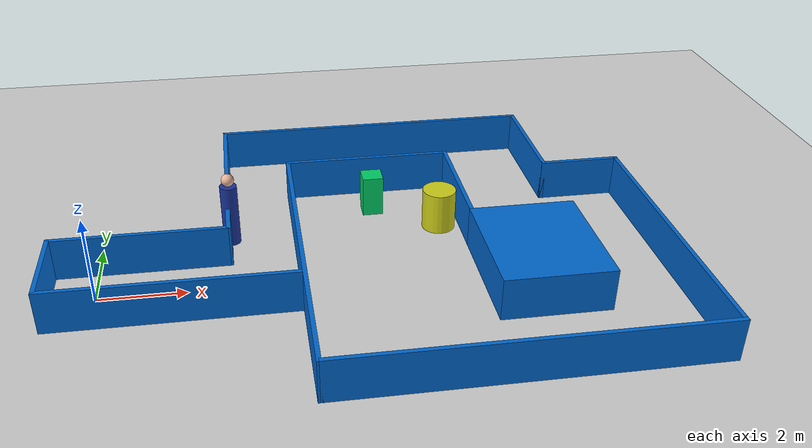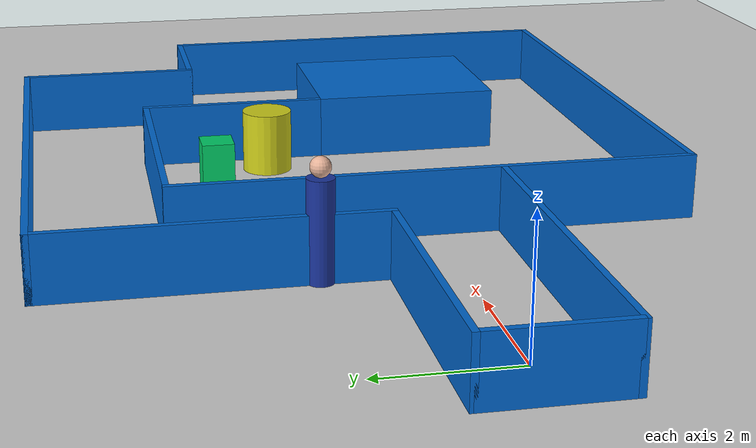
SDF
<?xml version="1.0"?>
<sdf version='1.7'>
  <world name='default'>

    <light name='sun' type='directional'>
      <cast_shadows>1</cast_shadows>
      <pose>0 0 10 0 -0 0</pose>
      <diffuse>0.8 0.8 0.8 1</diffuse>
      <specular>0.2 0.2 0.2 1</specular>
      <attenuation>
        <range>1000</range>
        <constant>0.9</constant>
        <linear>0.01</linear>
        <quadratic>0.001</quadratic>
      </attenuation>
      <direction>-0.5 0.1 -0.9</direction>
      <spot>
        <inner_angle>0</inner_angle>
        <outer_angle>0</outer_angle>
        <falloff>0</falloff>
      </spot>
    </light>

    <model name='ground_plane'>
      <static>1</static>
      <link name='link'>
        <collision name='collision'>
          <geometry>
            <plane>
              <normal>0 0 1</normal>
              <size>100 100</size>
            </plane>
          </geometry>
          <surface>
            <friction>
              <ode>
                <mu>100</mu>
                <mu2>50</mu2>
              </ode>
            </friction>
          </surface>
        </collision>
        <visual name='visual'>
          <cast_shadows>0</cast_shadows>
          <geometry>
            <plane>
              <normal>0 0 1</normal>
              <size>100 100</size>
            </plane>
          </geometry>
          <material>
            <script>
              <uri>file://media/materials/scripts/gazebo.material</uri>
              <name>Gazebo/Grey</name>
            </script>
          </material>
        </visual>
      </link>
    </model>

    <gravity>0 0 -9.8</gravity>
    <physics type='ode'>
      <max_step_size>0.001</max_step_size>
      <real_time_factor>1</real_time_factor>
      <real_time_update_rate>1000</real_time_update_rate>
    </physics>
    <scene>
      <ambient>0.4 0.4 0.4 1</ambient>
      <background>0.7 0.7 0.7 1</background>
      <shadows>0</shadows>
    </scene>
    <gui fullscreen='0'>
      <camera name='user_camera'>
        <pose>8.0 0.0 30.0 0.0 1.5707 1.5707</pose>
        <view_controller>orbit</view_controller>
      </camera>
    </gui>

    <model name="wall1">
      <static>1</static>
      <link name='wall1'>
        <pose>-1 0 0.5 0 0 0</pose>
        <collision name='wall1_collision'>
          <geometry><box><size>0.1 2 1</size></box></geometry>
        </collision>
        <visual name='wall1_visual'>
          <geometry><box><size>0.1 2 1</size></box></geometry>
          <material><ambient>0.1 0.1 0.1 1</ambient><diffuse>0 0.4 0.8 1</diffuse></material>
        </visual>
      </link>
    </model>

    <model name="wall2">
      <static>1</static>
      <link name='wall2'>
        <pose>1.7 -1 0.5 0 0 0</pose>
        <collision name='wall2_collision'>
          <geometry><box><size>5.5 0.1 1</size></box></geometry>
        </collision>
        <visual name='wall2_visual'>
          <geometry><box><size>5.5 0.1 1</size></box></geometry>
          <material><ambient>0.1 0.1 0.1 1</ambient><diffuse>0 0.4 0.8 1</diffuse></material>
        </visual>
      </link>
    </model>

    <model name="wall3">
      <static>1</static>
      <link name='wall3'>
        <pose>0.95 1 0.5 0 0 0</pose>
        <collision name='wall3_collision'>
          <geometry><box><size>4 0.1 1</size></box></geometry>
        </collision>
        <visual name='wall3_visual'>
          <geometry><box><size>4 0.1 1</size></box></geometry>
          <material><ambient>0.1 0.1 0.1 1</ambient><diffuse>0 0.4 0.8 1</diffuse></material>
        </visual>
      </link>
    </model>

    <model name="wall4">
      <static>1</static>
      <link name='wall4'>
        <pose>2.95 3.45 0.5 0 0 0</pose>
        <collision name='wall4_collision'>
          <geometry><box><size>0.1 5 1</size></box></geometry>
        </collision>
        <visual name='wall4_visual'>
          <geometry><box><size>0.1 5 1</size></box></geometry>
          <material><ambient>0.1 0.1 0.1 1</ambient><diffuse>0 0.4 0.8 1</diffuse></material>
        </visual>
      </link>
    </model>

    <model name="wall5">
      <static>1</static>
      <link name='wall5'>
        <pose>6.9 5.9 0.5 0 0 0</pose>
        <collision name='wall5_collision'>
          <geometry><box><size>8 0.1 1</size></box></geometry>
        </collision>
        <visual name='wall5_visual'>
          <geometry><box><size>8 0.1 1</size></box></geometry>
          <material><ambient>0.1 0.1 0.1 1</ambient><diffuse>0 0.4 0.8 1</diffuse></material>
        </visual>
      </link>
    </model>

    <model name="wall6">
      <static>1</static>
      <link name='wall6'>
        <pose>10.9 4.45 0.5 0 0 0</pose>
        <collision name='wall6_collision'>
          <geometry><box><size>0.1 3 1</size></box></geometry>
        </collision>
        <visual name='wall6_visual'>
          <geometry><box><size>0.1 3 1</size></box></geometry>
          <material><ambient>0.1 0.1 0.1 1</ambient><diffuse>0 0.4 0.8 1</diffuse></material>
        </visual>
      </link>
    </model>

    <model name="wall7">
      <static>1</static>
      <link name='wall7'>
        <pose>11.85 3.00 0.5 0 0 0</pose>
        <collision name='wall7_collision'>
          <geometry><box><size>2 0.1 1</size></box></geometry>
        </collision>
        <visual name='wall7_visual'>
          <geometry><box><size>2 0.1 1</size></box></geometry>
          <material><ambient>0.1 0.1 0.1 1</ambient><diffuse>0 0.4 0.8 1</diffuse></material>
        </visual>
      </link>
    </model>

    <model name="wall8">
      <static>1</static>
      <link name='wall8'>
        <pose>12.8 -0.45 0.5 0 0 0</pose>
        <collision name='wall8_collision'>
          <geometry><box><size>0.1 7 1</size></box></geometry>
        </collision>
        <visual name='wall8_visual'>
          <geometry><box><size>0.1 7 1</size></box></geometry>
          <material><ambient>0.1 0.1 0.1 1</ambient><diffuse>0 0.4 0.8 1</diffuse></material>
        </visual>
      </link>
    </model>

    <model name="wall9">
      <static>1</static>
      <link name='wall9'>
        <pose>8.675 -3.95 0.5 0 0 0</pose>
        <collision name='wall9_collision'>
          <geometry><box><size>8.35 0.1 1</size></box></geometry>
        </collision>
        <visual name='wall9_visual'>
          <geometry><box><size>8.35 0.1 1</size></box></geometry>
          <material><ambient>0.1 0.1 0.1 1</ambient><diffuse>0 0.4 0.8 1</diffuse></material>
        </visual>
      </link>
    </model>

    <model name="wall10">
      <static>1</static>
      <link name='wall10'>
        <pose>4.5 0 0.5 0 0 0</pose>
        <collision name='wall10_collision'>
          <geometry><box><size>0.1 8 1</size></box></geometry>
        </collision>
        <visual name='wall10_visual'>
          <geometry><box><size>0.1 8 1</size></box></geometry>
          <material><ambient>0.1 0.1 0.1 1</ambient><diffuse>0 0.4 0.8 1</diffuse></material>
        </visual>
      </link>
    </model>

    <model name="wall11">
      <static>1</static>
      <link name='wall11'>
        <pose>6.5 3.95 0.5 0 0 0</pose>
        <collision name='wall11_collision'>
          <geometry><box><size>4 0.1 1</size></box></geometry>
        </collision>
        <visual name='wall11_visual'>
          <geometry><box><size>4 0.1 1</size></box></geometry>
          <material><ambient>0.1 0.1 0.1 1</ambient><diffuse>0 0.4 0.8 1</diffuse></material>
        </visual>
      </link>
    </model>

    <model name="wall12">
      <static>1</static>
      <link name='wall12'>
        <pose>8.55 2.5 0.5 0 0 0</pose>
        <collision name='wall12_collision'>
          <geometry><box><size>0.1 3 1</size></box></geometry>
        </collision>
        <visual name='wall12_visual'>
          <geometry><box><size>0.1 3 1</size></box></geometry>
          <material><ambient>0.1 0.1 0.1 1</ambient><diffuse>0 0.4 0.8 1</diffuse></material>
        </visual>
      </link>
    </model>

    <model name="wall13">
      <static>1</static>
      <link name='wall13'>
        <pose>9.75 -0.5 0.5 0 0 0</pose>
        <collision name='wall13_collision'>
          <geometry><box><size>2.5 3 1</size></box></geometry>
        </collision>
        <visual name='wall13_visual'>
          <geometry><box><size>2.5 3 1</size></box></geometry>
          <material><ambient>0.1 0.1 0.1 1</ambient><diffuse>0 0.4 0.8 1</diffuse></material>
        </visual>
      </link>
    </model>

    <model name="goal">
      <static>1</static>
      <link name='goal'>
        <pose>6.5 3 0.5 0 0 0</pose>
        <collision name='goal_collision'>
          <geometry><box><size>0.5 0.5 1</size></box></geometry>
        </collision>
        <visual name='goal_visual'>
          <geometry><box><size>0.5 0.5 1</size></box></geometry>
          <material><ambient>0.1 0.1 0.1 1</ambient><diffuse>0 0.8 0.4 1</diffuse></material>
        </visual>
      </link>
    </model>

    <model name="circular_obstacle">
      <pose>8.0 2.0 0.5 0 0 0</pose>
      <allow_auto_disable>0</allow_auto_disable>
      <link name="link">
        <inertial>
          <mass>100.0</mass>
          <inertia><ixx>10.0</ixx><iyy>10.0</iyy><izz>10.0</izz></inertia>
        </inertial>
        <collision name="collision">
          <geometry><cylinder><radius>0.4</radius><length>1.0</length></cylinder></geometry>
          <surface><friction><ode><mu>0.0</mu><mu2>0.0</mu2></ode></friction></surface>
        </collision>
        <visual name="visual">
          <geometry><cylinder><radius>0.4</radius><length>1.0</length></cylinder></geometry>
          <material><ambient>0.8 0.8 0.1 1</ambient><diffuse>0.8 0.8 0.1 1</diffuse></material>
        </visual>
      </link>
      <plugin name="circular_obstacle_planar_move" filename="libgazebo_ros_planar_move.so">
        <ros>
          <namespace>/obstacle_circ</namespace>
          <remapping>cmd_vel:=cmd_vel</remapping>
        </ros>
        <update_rate>50.0</update_rate>
        <publish_rate>10.0</publish_rate>
        <publish_odom>false</publish_odom>
        <publish_odom_tf>false</publish_odom_tf>
        <robot_base_frame>link</robot_base_frame>
      </plugin>
    </model>

    <model name="random_human">
      <pose>3.0 2.0 0.0 0 0 0</pose>
      <allow_auto_disable>0</allow_auto_disable>
      <link name="link">
        <inertial>
          <mass>70.0</mass>
          <inertia><ixx>10.0</ixx><iyy>10.0</iyy><izz>10.0</izz></inertia>
        </inertial>

        <collision name="body_collision">
          <pose>0 0 0.75 0 0 0</pose>
          <geometry><cylinder><radius>0.2</radius><length>1.5</length></cylinder></geometry>
          <surface><friction><ode><mu>0.0</mu><mu2>0.0</mu2></ode></friction></surface>
        </collision>
        <visual name="body_visual">
          <pose>0 0 0.75 0 0 0</pose>
          <geometry><cylinder><radius>0.2</radius><length>1.5</length></cylinder></geometry>
          <material><ambient>0.1 0.2 0.6 1</ambient><diffuse>0.1 0.2 0.6 1</diffuse></material>
        </visual>

        <collision name="head_collision">
          <pose>0 0 1.65 0 0 0</pose>
          <geometry><sphere><radius>0.15</radius></sphere></geometry>
        </collision>
        <visual name="head_visual">
          <pose>0 0 1.65 0 0 0</pose>
          <geometry><sphere><radius>0.15</radius></sphere></geometry>
          <material><ambient>0.9 0.7 0.6 1</ambient><diffuse>0.9 0.7 0.6 1</diffuse></material>
        </visual>
      </link>

      <plugin name="human_planar_move" filename="libgazebo_ros_planar_move.so">
        <ros>
          <namespace>/human</namespace>
          <remapping>cmd_vel:=cmd_vel</remapping>
        </ros>
        <update_rate>50.0</update_rate>
        <publish_rate>10.0</publish_rate>
        <publish_odom>true</publish_odom>
        <publish_odom_tf>true</publish_odom_tf>
        <robot_base_frame>link</robot_base_frame>
      </plugin>
    </model>

  </world>
</sdf>
